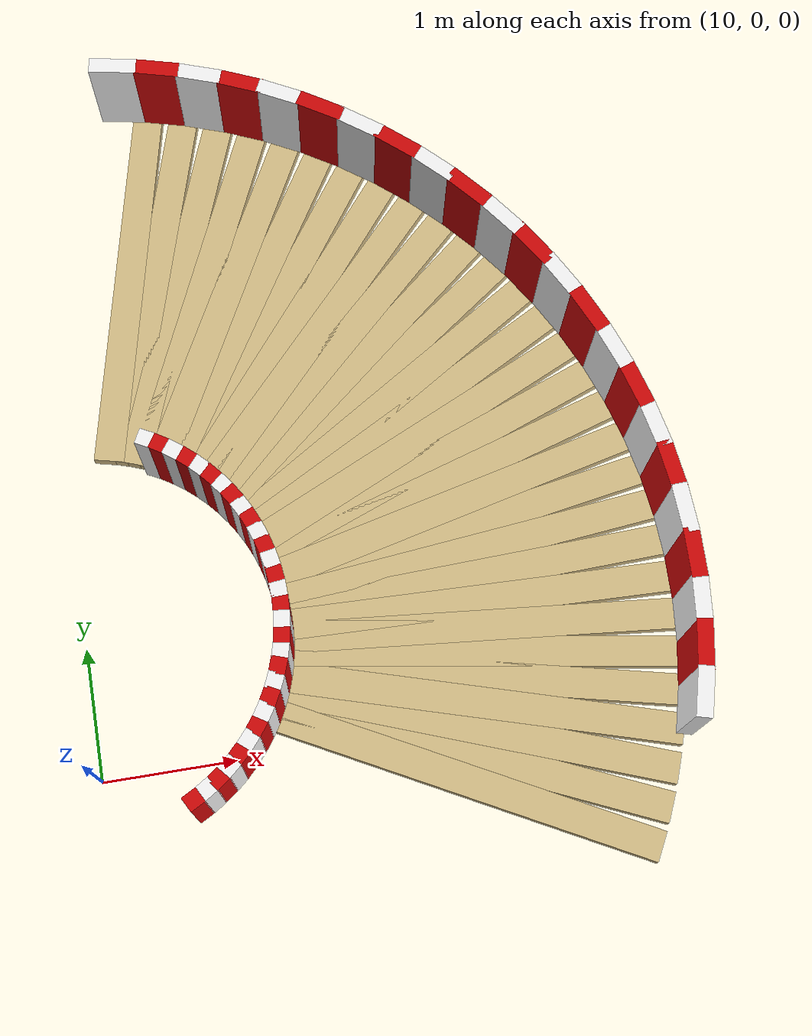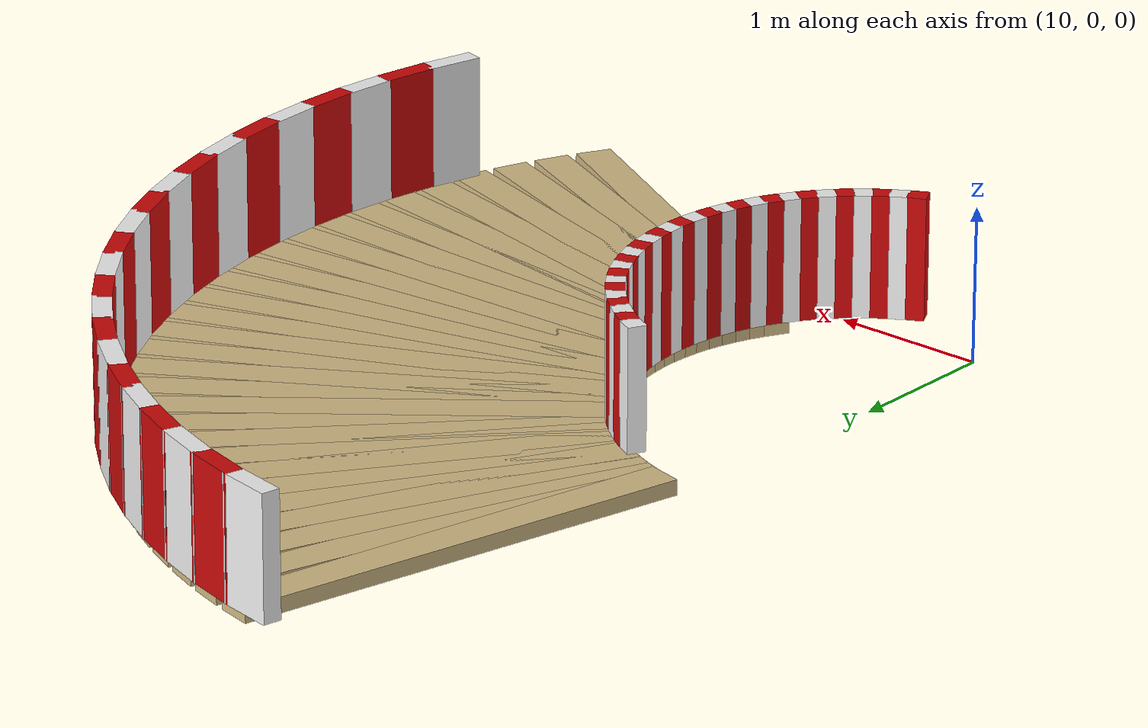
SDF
<sdf version="1.6">
 <world name="evrenos_teknofest_2026">
  <include><uri>model://sun</uri></include>
  <model name="main_course">
   <static>true</static>
   <link name="right_turn_road_16">
    <pose>12.6458 -0.4142 -0.0500 0.000000 0.000000 1.079922</pose>
    <collision name="right_turn_road_16_collision">
     <geometry><box><size>0.2356 3.0000 0.1000</size></box></geometry>
    </collision>
    <visual name="right_turn_road_16_visual">
     <geometry><box><size>0.2356 3.0000 0.1000</size></box></geometry>
     <material><ambient>0.82 0.73 0.52 1</ambient><diffuse>0.82 0.73 0.52 1</diffuse></material>
    </visual>
   </link>
   <link name="right_turn_road_17">
    <pose>12.7326 -0.2381 -0.0500 0.000000 0.000000 1.145372</pose>
    <collision name="right_turn_road_17_collision">
     <geometry><box><size>0.2356 3.0000 0.1000</size></box></geometry>
    </collision>
    <visual name="right_turn_road_17_visual">
     <geometry><box><size>0.2356 3.0000 0.1000</size></box></geometry>
     <material><ambient>0.82 0.73 0.52 1</ambient><diffuse>0.82 0.73 0.52 1</diffuse></material>
    </visual>
   </link>
   <link name="right_turn_road_18">
    <pose>12.8077 -0.0568 -0.0500 0.000000 0.000000 1.210822</pose>
    <collision name="right_turn_road_18_collision">
     <geometry><box><size>0.2356 3.0000 0.1000</size></box></geometry>
    </collision>
    <visual name="right_turn_road_18_visual">
     <geometry><box><size>0.2356 3.0000 0.1000</size></box></geometry>
     <material><ambient>0.82 0.73 0.52 1</ambient><diffuse>0.82 0.73 0.52 1</diffuse></material>
    </visual>
   </link>
   <link name="right_turn_road_19">
    <pose>12.8708 0.1291 -0.0500 0.000000 0.000000 1.276272</pose>
    <collision name="right_turn_road_19_collision">
     <geometry><box><size>0.2356 3.0000 0.1000</size></box></geometry>
    </collision>
    <visual name="right_turn_road_19_visual">
     <geometry><box><size>0.2356 3.0000 0.1000</size></box></geometry>
     <material><ambient>0.82 0.73 0.52 1</ambient><diffuse>0.82 0.73 0.52 1</diffuse></material>
    </visual>
   </link>
   <link name="right_turn_road_20">
    <pose>12.9216 0.3188 -0.0500 0.000000 0.000000 1.341722</pose>
    <collision name="right_turn_road_20_collision">
     <geometry><box><size>0.2356 3.0000 0.1000</size></box></geometry>
    </collision>
    <visual name="right_turn_road_20_visual">
     <geometry><box><size>0.2356 3.0000 0.1000</size></box></geometry>
     <material><ambient>0.82 0.73 0.52 1</ambient><diffuse>0.82 0.73 0.52 1</diffuse></material>
    </visual>
   </link>
   <link name="right_turn_road_21">
    <pose>12.9599 0.5113 -0.0500 0.000000 0.000000 1.407172</pose>
    <collision name="right_turn_road_21_collision">
     <geometry><box><size>0.2356 3.0000 0.1000</size></box></geometry>
    </collision>
    <visual name="right_turn_road_21_visual">
     <geometry><box><size>0.2356 3.0000 0.1000</size></box></geometry>
     <material><ambient>0.82 0.73 0.52 1</ambient><diffuse>0.82 0.73 0.52 1</diffuse></material>
    </visual>
   </link>
   <link name="right_turn_road_22">
    <pose>12.9856 0.7059 -0.0500 0.000000 0.000000 1.472622</pose>
    <collision name="right_turn_road_22_collision">
     <geometry><box><size>0.2356 3.0000 0.1000</size></box></geometry>
    </collision>
    <visual name="right_turn_road_22_visual">
     <geometry><box><size>0.2356 3.0000 0.1000</size></box></geometry>
     <material><ambient>0.82 0.73 0.52 1</ambient><diffuse>0.82 0.73 0.52 1</diffuse></material>
    </visual>
   </link>
   <link name="right_turn_road_23">
    <pose>12.9984 0.9018 -0.0500 0.000000 0.000000 1.538071</pose>
    <collision name="right_turn_road_23_collision">
     <geometry><box><size>0.2356 3.0000 0.1000</size></box></geometry>
    </collision>
    <visual name="right_turn_road_23_visual">
     <geometry><box><size>0.2356 3.0000 0.1000</size></box></geometry>
     <material><ambient>0.82 0.73 0.52 1</ambient><diffuse>0.82 0.73 0.52 1</diffuse></material>
    </visual>
   </link>
   <link name="right_turn_road_24">
    <pose>12.9984 1.0982 -0.0500 0.000000 0.000000 1.603521</pose>
    <collision name="right_turn_road_24_collision">
     <geometry><box><size>0.2356 3.0000 0.1000</size></box></geometry>
    </collision>
    <visual name="right_turn_road_24_visual">
     <geometry><box><size>0.2356 3.0000 0.1000</size></box></geometry>
     <material><ambient>0.82 0.73 0.52 1</ambient><diffuse>0.82 0.73 0.52 1</diffuse></material>
    </visual>
   </link>
   <link name="right_turn_road_25">
    <pose>12.9856 1.2941 -0.0500 0.000000 0.000000 1.668971</pose>
    <collision name="right_turn_road_25_collision">
     <geometry><box><size>0.2356 3.0000 0.1000</size></box></geometry>
    </collision>
    <visual name="right_turn_road_25_visual">
     <geometry><box><size>0.2356 3.0000 0.1000</size></box></geometry>
     <material><ambient>0.82 0.73 0.52 1</ambient><diffuse>0.82 0.73 0.52 1</diffuse></material>
    </visual>
   </link>
   <link name="right_turn_road_26">
    <pose>12.9599 1.4887 -0.0500 0.000000 0.000000 1.734421</pose>
    <collision name="right_turn_road_26_collision">
     <geometry><box><size>0.2356 3.0000 0.1000</size></box></geometry>
    </collision>
    <visual name="right_turn_road_26_visual">
     <geometry><box><size>0.2356 3.0000 0.1000</size></box></geometry>
     <material><ambient>0.82 0.73 0.52 1</ambient><diffuse>0.82 0.73 0.52 1</diffuse></material>
    </visual>
   </link>
   <link name="right_turn_road_27">
    <pose>12.9216 1.6812 -0.0500 0.000000 0.000000 1.799871</pose>
    <collision name="right_turn_road_27_collision">
     <geometry><box><size>0.2356 3.0000 0.1000</size></box></geometry>
    </collision>
    <visual name="right_turn_road_27_visual">
     <geometry><box><size>0.2356 3.0000 0.1000</size></box></geometry>
     <material><ambient>0.82 0.73 0.52 1</ambient><diffuse>0.82 0.73 0.52 1</diffuse></material>
    </visual>
   </link>
   <link name="right_turn_road_28">
    <pose>12.8708 1.8709 -0.0500 0.000000 0.000000 1.865321</pose>
    <collision name="right_turn_road_28_collision">
     <geometry><box><size>0.2356 3.0000 0.1000</size></box></geometry>
    </collision>
    <visual name="right_turn_road_28_visual">
     <geometry><box><size>0.2356 3.0000 0.1000</size></box></geometry>
     <material><ambient>0.82 0.73 0.52 1</ambient><diffuse>0.82 0.73 0.52 1</diffuse></material>
    </visual>
   </link>
   <link name="right_turn_road_29">
    <pose>12.8077 2.0568 -0.0500 0.000000 0.000000 1.930770</pose>
    <collision name="right_turn_road_29_collision">
     <geometry><box><size>0.2356 3.0000 0.1000</size></box></geometry>
    </collision>
    <visual name="right_turn_road_29_visual">
     <geometry><box><size>0.2356 3.0000 0.1000</size></box></geometry>
     <material><ambient>0.82 0.73 0.52 1</ambient><diffuse>0.82 0.73 0.52 1</diffuse></material>
    </visual>
   </link>
   <link name="right_turn_road_30">
    <pose>12.7326 2.2381 -0.0500 0.000000 0.000000 1.996220</pose>
    <collision name="right_turn_road_30_collision">
     <geometry><box><size>0.2356 3.0000 0.1000</size></box></geometry>
    </collision>
    <visual name="right_turn_road_30_visual">
     <geometry><box><size>0.2356 3.0000 0.1000</size></box></geometry>
     <material><ambient>0.82 0.73 0.52 1</ambient><diffuse>0.82 0.73 0.52 1</diffuse></material>
    </visual>
   </link>
   <link name="right_turn_road_31">
    <pose>12.6458 2.4142 -0.0500 0.000000 0.000000 2.061670</pose>
    <collision name="right_turn_road_31_collision">
     <geometry><box><size>0.2356 3.0000 0.1000</size></box></geometry>
    </collision>
    <visual name="right_turn_road_31_visual">
     <geometry><box><size>0.2356 3.0000 0.1000</size></box></geometry>
     <material><ambient>0.82 0.73 0.52 1</ambient><diffuse>0.82 0.73 0.52 1</diffuse></material>
    </visual>
   </link>
   <link name="right_turn_road_32">
    <pose>12.5476 2.5842 -0.0500 0.000000 0.000000 2.127120</pose>
    <collision name="right_turn_road_32_collision">
     <geometry><box><size>0.2356 3.0000 0.1000</size></box></geometry>
    </collision>
    <visual name="right_turn_road_32_visual">
     <geometry><box><size>0.2356 3.0000 0.1000</size></box></geometry>
     <material><ambient>0.82 0.73 0.52 1</ambient><diffuse>0.82 0.73 0.52 1</diffuse></material>
    </visual>
   </link>
   <link name="right_turn_road_33">
    <pose>12.4385 2.7474 -0.0500 0.000000 0.000000 2.192570</pose>
    <collision name="right_turn_road_33_collision">
     <geometry><box><size>0.2356 3.0000 0.1000</size></box></geometry>
    </collision>
    <visual name="right_turn_road_33_visual">
     <geometry><box><size>0.2356 3.0000 0.1000</size></box></geometry>
     <material><ambient>0.82 0.73 0.52 1</ambient><diffuse>0.82 0.73 0.52 1</diffuse></material>
    </visual>
   </link>
   <link name="right_turn_road_34">
    <pose>12.3190 2.9032 -0.0500 0.000000 0.000000 2.258020</pose>
    <collision name="right_turn_road_34_collision">
     <geometry><box><size>0.2356 3.0000 0.1000</size></box></geometry>
    </collision>
    <visual name="right_turn_road_34_visual">
     <geometry><box><size>0.2356 3.0000 0.1000</size></box></geometry>
     <material><ambient>0.82 0.73 0.52 1</ambient><diffuse>0.82 0.73 0.52 1</diffuse></material>
    </visual>
   </link>
   <link name="right_turn_road_35">
    <pose>12.1896 3.0508 -0.0500 0.000000 0.000000 2.323470</pose>
    <collision name="right_turn_road_35_collision">
     <geometry><box><size>0.2356 3.0000 0.1000</size></box></geometry>
    </collision>
    <visual name="right_turn_road_35_visual">
     <geometry><box><size>0.2356 3.0000 0.1000</size></box></geometry>
     <material><ambient>0.82 0.73 0.52 1</ambient><diffuse>0.82 0.73 0.52 1</diffuse></material>
    </visual>
   </link>
   <link name="right_turn_road_36">
    <pose>12.0508 3.1896 -0.0500 0.000000 0.000000 2.388919</pose>
    <collision name="right_turn_road_36_collision">
     <geometry><box><size>0.2356 3.0000 0.1000</size></box></geometry>
    </collision>
    <visual name="right_turn_road_36_visual">
     <geometry><box><size>0.2356 3.0000 0.1000</size></box></geometry>
     <material><ambient>0.82 0.73 0.52 1</ambient><diffuse>0.82 0.73 0.52 1</diffuse></material>
    </visual>
   </link>
   <link name="right_turn_road_37">
    <pose>11.9032 3.3190 -0.0500 0.000000 0.000000 2.454369</pose>
    <collision name="right_turn_road_37_collision">
     <geometry><box><size>0.2356 3.0000 0.1000</size></box></geometry>
    </collision>
    <visual name="right_turn_road_37_visual">
     <geometry><box><size>0.2356 3.0000 0.1000</size></box></geometry>
     <material><ambient>0.82 0.73 0.52 1</ambient><diffuse>0.82 0.73 0.52 1</diffuse></material>
    </visual>
   </link>
   <link name="right_turn_road_38">
    <pose>11.7474 3.4385 -0.0500 0.000000 0.000000 2.519819</pose>
    <collision name="right_turn_road_38_collision">
     <geometry><box><size>0.2356 3.0000 0.1000</size></box></geometry>
    </collision>
    <visual name="right_turn_road_38_visual">
     <geometry><box><size>0.2356 3.0000 0.1000</size></box></geometry>
     <material><ambient>0.82 0.73 0.52 1</ambient><diffuse>0.82 0.73 0.52 1</diffuse></material>
    </visual>
   </link>
   <link name="right_turn_road_39">
    <pose>11.5842 3.5476 -0.0500 0.000000 0.000000 2.585269</pose>
    <collision name="right_turn_road_39_collision">
     <geometry><box><size>0.2356 3.0000 0.1000</size></box></geometry>
    </collision>
    <visual name="right_turn_road_39_visual">
     <geometry><box><size>0.2356 3.0000 0.1000</size></box></geometry>
     <material><ambient>0.82 0.73 0.52 1</ambient><diffuse>0.82 0.73 0.52 1</diffuse></material>
    </visual>
   </link>
   <link name="right_turn_road_40">
    <pose>11.4142 3.6458 -0.0500 0.000000 0.000000 2.650719</pose>
    <collision name="right_turn_road_40_collision">
     <geometry><box><size>0.2356 3.0000 0.1000</size></box></geometry>
    </collision>
    <visual name="right_turn_road_40_visual">
     <geometry><box><size>0.2356 3.0000 0.1000</size></box></geometry>
     <material><ambient>0.82 0.73 0.52 1</ambient><diffuse>0.82 0.73 0.52 1</diffuse></material>
    </visual>
   </link>
   <link name="right_turn_road_41">
    <pose>11.2381 3.7326 -0.0500 0.000000 0.000000 2.716169</pose>
    <collision name="right_turn_road_41_collision">
     <geometry><box><size>0.2356 3.0000 0.1000</size></box></geometry>
    </collision>
    <visual name="right_turn_road_41_visual">
     <geometry><box><size>0.2356 3.0000 0.1000</size></box></geometry>
     <material><ambient>0.82 0.73 0.52 1</ambient><diffuse>0.82 0.73 0.52 1</diffuse></material>
    </visual>
   </link>
   <link name="right_turn_road_42">
    <pose>11.0568 3.8077 -0.0500 0.000000 0.000000 2.781618</pose>
    <collision name="right_turn_road_42_collision">
     <geometry><box><size>0.2356 3.0000 0.1000</size></box></geometry>
    </collision>
    <visual name="right_turn_road_42_visual">
     <geometry><box><size>0.2356 3.0000 0.1000</size></box></geometry>
     <material><ambient>0.82 0.73 0.52 1</ambient><diffuse>0.82 0.73 0.52 1</diffuse></material>
    </visual>
   </link>
   <link name="right_turn_road_43">
    <pose>10.8709 3.8708 -0.0500 0.000000 0.000000 2.847068</pose>
    <collision name="right_turn_road_43_collision">
     <geometry><box><size>0.2356 3.0000 0.1000</size></box></geometry>
    </collision>
    <visual name="right_turn_road_43_visual">
     <geometry><box><size>0.2356 3.0000 0.1000</size></box></geometry>
     <material><ambient>0.82 0.73 0.52 1</ambient><diffuse>0.82 0.73 0.52 1</diffuse></material>
    </visual>
   </link>
   <link name="right_turn_road_44">
    <pose>10.6812 3.9216 -0.0500 0.000000 0.000000 2.912518</pose>
    <collision name="right_turn_road_44_collision">
     <geometry><box><size>0.2356 3.0000 0.1000</size></box></geometry>
    </collision>
    <visual name="right_turn_road_44_visual">
     <geometry><box><size>0.2356 3.0000 0.1000</size></box></geometry>
     <material><ambient>0.82 0.73 0.52 1</ambient><diffuse>0.82 0.73 0.52 1</diffuse></material>
    </visual>
   </link>
   <link name="right_turn_bar_0_6">
    <pose>10.7009 -0.3262 0.4000 0.000000 0.000000 0.486199</pose>
    <collision name="right_turn_bar_0_6_collision">
     <geometry><box><size>0.1234 0.1200 0.8000</size></box></geometry>
    </collision>
    <visual name="right_turn_bar_0_6_visual">
     <geometry><box><size>0.1234 0.1200 0.8000</size></box></geometry>
     <material><ambient>0.8 0.03 0.03 1</ambient><diffuse>0.8 0.03 0.03 1</diffuse></material>
    </visual>
   </link>
   <link name="right_turn_bar_0_7">
    <pose>10.7980 -0.2701 0.4000 0.000000 0.000000 0.560999</pose>
    <collision name="right_turn_bar_0_7_collision">
     <geometry><box><size>0.1234 0.1200 0.8000</size></box></geometry>
    </collision>
    <visual name="right_turn_bar_0_7_visual">
     <geometry><box><size>0.1234 0.1200 0.8000</size></box></geometry>
     <material><ambient>0.95 0.95 0.95 1</ambient><diffuse>0.95 0.95 0.95 1</diffuse></material>
    </visual>
   </link>
   <link name="right_turn_bar_0_8">
    <pose>10.8907 -0.2069 0.4000 0.000000 0.000000 0.635799</pose>
    <collision name="right_turn_bar_0_8_collision">
     <geometry><box><size>0.1234 0.1200 0.8000</size></box></geometry>
    </collision>
    <visual name="right_turn_bar_0_8_visual">
     <geometry><box><size>0.1234 0.1200 0.8000</size></box></geometry>
     <material><ambient>0.8 0.03 0.03 1</ambient><diffuse>0.8 0.03 0.03 1</diffuse></material>
    </visual>
   </link>
   <link name="right_turn_bar_0_9">
    <pose>10.9784 -0.1370 0.4000 0.000000 0.000000 0.710598</pose>
    <collision name="right_turn_bar_0_9_collision">
     <geometry><box><size>0.1234 0.1200 0.8000</size></box></geometry>
    </collision>
    <visual name="right_turn_bar_0_9_visual">
     <geometry><box><size>0.1234 0.1200 0.8000</size></box></geometry>
     <material><ambient>0.95 0.95 0.95 1</ambient><diffuse>0.95 0.95 0.95 1</diffuse></material>
    </visual>
   </link>
   <link name="right_turn_bar_0_10">
    <pose>11.0607 -0.0607 0.4000 0.000000 0.000000 0.785398</pose>
    <collision name="right_turn_bar_0_10_collision">
     <geometry><box><size>0.1234 0.1200 0.8000</size></box></geometry>
    </collision>
    <visual name="right_turn_bar_0_10_visual">
     <geometry><box><size>0.1234 0.1200 0.8000</size></box></geometry>
     <material><ambient>0.8 0.03 0.03 1</ambient><diffuse>0.8 0.03 0.03 1</diffuse></material>
    </visual>
   </link>
   <link name="right_turn_bar_0_11">
    <pose>11.1370 0.0216 0.4000 0.000000 0.000000 0.860198</pose>
    <collision name="right_turn_bar_0_11_collision">
     <geometry><box><size>0.1234 0.1200 0.8000</size></box></geometry>
    </collision>
    <visual name="right_turn_bar_0_11_visual">
     <geometry><box><size>0.1234 0.1200 0.8000</size></box></geometry>
     <material><ambient>0.95 0.95 0.95 1</ambient><diffuse>0.95 0.95 0.95 1</diffuse></material>
    </visual>
   </link>
   <link name="right_turn_bar_0_12">
    <pose>11.2069 0.1093 0.4000 0.000000 0.000000 0.934998</pose>
    <collision name="right_turn_bar_0_12_collision">
     <geometry><box><size>0.1234 0.1200 0.8000</size></box></geometry>
    </collision>
    <visual name="right_turn_bar_0_12_visual">
     <geometry><box><size>0.1234 0.1200 0.8000</size></box></geometry>
     <material><ambient>0.8 0.03 0.03 1</ambient><diffuse>0.8 0.03 0.03 1</diffuse></material>
    </visual>
   </link>
   <link name="right_turn_bar_0_13">
    <pose>11.2701 0.2020 0.4000 0.000000 0.000000 1.009798</pose>
    <collision name="right_turn_bar_0_13_collision">
     <geometry><box><size>0.1234 0.1200 0.8000</size></box></geometry>
    </collision>
    <visual name="right_turn_bar_0_13_visual">
     <geometry><box><size>0.1234 0.1200 0.8000</size></box></geometry>
     <material><ambient>0.95 0.95 0.95 1</ambient><diffuse>0.95 0.95 0.95 1</diffuse></material>
    </visual>
   </link>
   <link name="right_turn_bar_0_14">
    <pose>11.3262 0.2991 0.4000 0.000000 0.000000 1.084597</pose>
    <collision name="right_turn_bar_0_14_collision">
     <geometry><box><size>0.1234 0.1200 0.8000</size></box></geometry>
    </collision>
    <visual name="right_turn_bar_0_14_visual">
     <geometry><box><size>0.1234 0.1200 0.8000</size></box></geometry>
     <material><ambient>0.8 0.03 0.03 1</ambient><diffuse>0.8 0.03 0.03 1</diffuse></material>
    </visual>
   </link>
   <link name="right_turn_bar_0_15">
    <pose>11.3748 0.4002 0.4000 0.000000 0.000000 1.159397</pose>
    <collision name="right_turn_bar_0_15_collision">
     <geometry><box><size>0.1234 0.1200 0.8000</size></box></geometry>
    </collision>
    <visual name="right_turn_bar_0_15_visual">
     <geometry><box><size>0.1234 0.1200 0.8000</size></box></geometry>
     <material><ambient>0.95 0.95 0.95 1</ambient><diffuse>0.95 0.95 0.95 1</diffuse></material>
    </visual>
   </link>
   <link name="right_turn_bar_0_16">
    <pose>11.4158 0.5046 0.4000 0.000000 0.000000 1.234197</pose>
    <collision name="right_turn_bar_0_16_collision">
     <geometry><box><size>0.1234 0.1200 0.8000</size></box></geometry>
    </collision>
    <visual name="right_turn_bar_0_16_visual">
     <geometry><box><size>0.1234 0.1200 0.8000</size></box></geometry>
     <material><ambient>0.8 0.03 0.03 1</ambient><diffuse>0.8 0.03 0.03 1</diffuse></material>
    </visual>
   </link>
   <link name="right_turn_bar_0_17">
    <pose>11.4489 0.6118 0.4000 0.000000 0.000000 1.308997</pose>
    <collision name="right_turn_bar_0_17_collision">
     <geometry><box><size>0.1234 0.1200 0.8000</size></box></geometry>
    </collision>
    <visual name="right_turn_bar_0_17_visual">
     <geometry><box><size>0.1234 0.1200 0.8000</size></box></geometry>
     <material><ambient>0.95 0.95 0.95 1</ambient><diffuse>0.95 0.95 0.95 1</diffuse></material>
    </visual>
   </link>
   <link name="right_turn_bar_0_18">
    <pose>11.4738 0.7211 0.4000 0.000000 0.000000 1.383797</pose>
    <collision name="right_turn_bar_0_18_collision">
     <geometry><box><size>0.1234 0.1200 0.8000</size></box></geometry>
    </collision>
    <visual name="right_turn_bar_0_18_visual">
     <geometry><box><size>0.1234 0.1200 0.8000</size></box></geometry>
     <material><ambient>0.8 0.03 0.03 1</ambient><diffuse>0.8 0.03 0.03 1</diffuse></material>
    </visual>
   </link>
   <link name="right_turn_bar_0_19">
    <pose>11.4906 0.8321 0.4000 0.000000 0.000000 1.458597</pose>
    <collision name="right_turn_bar_0_19_collision">
     <geometry><box><size>0.1234 0.1200 0.8000</size></box></geometry>
    </collision>
    <visual name="right_turn_bar_0_19_visual">
     <geometry><box><size>0.1234 0.1200 0.8000</size></box></geometry>
     <material><ambient>0.95 0.95 0.95 1</ambient><diffuse>0.95 0.95 0.95 1</diffuse></material>
    </visual>
   </link>
   <link name="right_turn_bar_0_20">
    <pose>11.4990 0.9439 0.4000 0.000000 0.000000 1.533396</pose>
    <collision name="right_turn_bar_0_20_collision">
     <geometry><box><size>0.1234 0.1200 0.8000</size></box></geometry>
    </collision>
    <visual name="right_turn_bar_0_20_visual">
     <geometry><box><size>0.1234 0.1200 0.8000</size></box></geometry>
     <material><ambient>0.8 0.03 0.03 1</ambient><diffuse>0.8 0.03 0.03 1</diffuse></material>
    </visual>
   </link>
   <link name="right_turn_bar_0_21">
    <pose>11.4990 1.0561 0.4000 0.000000 0.000000 1.608196</pose>
    <collision name="right_turn_bar_0_21_collision">
     <geometry><box><size>0.1234 0.1200 0.8000</size></box></geometry>
    </collision>
    <visual name="right_turn_bar_0_21_visual">
     <geometry><box><size>0.1234 0.1200 0.8000</size></box></geometry>
     <material><ambient>0.95 0.95 0.95 1</ambient><diffuse>0.95 0.95 0.95 1</diffuse></material>
    </visual>
   </link>
   <link name="right_turn_bar_0_22">
    <pose>11.4906 1.1679 0.4000 0.000000 0.000000 1.682996</pose>
    <collision name="right_turn_bar_0_22_collision">
     <geometry><box><size>0.1234 0.1200 0.8000</size></box></geometry>
    </collision>
    <visual name="right_turn_bar_0_22_visual">
     <geometry><box><size>0.1234 0.1200 0.8000</size></box></geometry>
     <material><ambient>0.8 0.03 0.03 1</ambient><diffuse>0.8 0.03 0.03 1</diffuse></material>
    </visual>
   </link>
   <link name="right_turn_bar_0_23">
    <pose>11.4738 1.2789 0.4000 0.000000 0.000000 1.757796</pose>
    <collision name="right_turn_bar_0_23_collision">
     <geometry><box><size>0.1234 0.1200 0.8000</size></box></geometry>
    </collision>
    <visual name="right_turn_bar_0_23_visual">
     <geometry><box><size>0.1234 0.1200 0.8000</size></box></geometry>
     <material><ambient>0.95 0.95 0.95 1</ambient><diffuse>0.95 0.95 0.95 1</diffuse></material>
    </visual>
   </link>
   <link name="right_turn_bar_0_24">
    <pose>11.4489 1.3882 0.4000 0.000000 0.000000 1.832596</pose>
    <collision name="right_turn_bar_0_24_collision">
     <geometry><box><size>0.1234 0.1200 0.8000</size></box></geometry>
    </collision>
    <visual name="right_turn_bar_0_24_visual">
     <geometry><box><size>0.1234 0.1200 0.8000</size></box></geometry>
     <material><ambient>0.8 0.03 0.03 1</ambient><diffuse>0.8 0.03 0.03 1</diffuse></material>
    </visual>
   </link>
   <link name="right_turn_bar_0_25">
    <pose>11.4158 1.4954 0.4000 0.000000 0.000000 1.907396</pose>
    <collision name="right_turn_bar_0_25_collision">
     <geometry><box><size>0.1234 0.1200 0.8000</size></box></geometry>
    </collision>
    <visual name="right_turn_bar_0_25_visual">
     <geometry><box><size>0.1234 0.1200 0.8000</size></box></geometry>
     <material><ambient>0.95 0.95 0.95 1</ambient><diffuse>0.95 0.95 0.95 1</diffuse></material>
    </visual>
   </link>
   <link name="right_turn_bar_0_26">
    <pose>11.3748 1.5998 0.4000 0.000000 0.000000 1.982195</pose>
    <collision name="right_turn_bar_0_26_collision">
     <geometry><box><size>0.1234 0.1200 0.8000</size></box></geometry>
    </collision>
    <visual name="right_turn_bar_0_26_visual">
     <geometry><box><size>0.1234 0.1200 0.8000</size></box></geometry>
     <material><ambient>0.8 0.03 0.03 1</ambient><diffuse>0.8 0.03 0.03 1</diffuse></material>
    </visual>
   </link>
   <link name="right_turn_bar_0_27">
    <pose>11.3262 1.7009 0.4000 0.000000 0.000000 2.056995</pose>
    <collision name="right_turn_bar_0_27_collision">
     <geometry><box><size>0.1234 0.1200 0.8000</size></box></geometry>
    </collision>
    <visual name="right_turn_bar_0_27_visual">
     <geometry><box><size>0.1234 0.1200 0.8000</size></box></geometry>
     <material><ambient>0.95 0.95 0.95 1</ambient><diffuse>0.95 0.95 0.95 1</diffuse></material>
    </visual>
   </link>
   <link name="right_turn_bar_0_28">
    <pose>11.2701 1.7980 0.4000 0.000000 0.000000 2.131795</pose>
    <collision name="right_turn_bar_0_28_collision">
     <geometry><box><size>0.1234 0.1200 0.8000</size></box></geometry>
    </collision>
    <visual name="right_turn_bar_0_28_visual">
     <geometry><box><size>0.1234 0.1200 0.8000</size></box></geometry>
     <material><ambient>0.8 0.03 0.03 1</ambient><diffuse>0.8 0.03 0.03 1</diffuse></material>
    </visual>
   </link>
   <link name="right_turn_bar_0_29">
    <pose>11.2069 1.8907 0.4000 0.000000 0.000000 2.206595</pose>
    <collision name="right_turn_bar_0_29_collision">
     <geometry><box><size>0.1234 0.1200 0.8000</size></box></geometry>
    </collision>
    <visual name="right_turn_bar_0_29_visual">
     <geometry><box><size>0.1234 0.1200 0.8000</size></box></geometry>
     <material><ambient>0.95 0.95 0.95 1</ambient><diffuse>0.95 0.95 0.95 1</diffuse></material>
    </visual>
   </link>
   <link name="right_turn_bar_0_30">
    <pose>11.1370 1.9784 0.4000 0.000000 0.000000 2.281395</pose>
    <collision name="right_turn_bar_0_30_collision">
     <geometry><box><size>0.1234 0.1200 0.8000</size></box></geometry>
    </collision>
    <visual name="right_turn_bar_0_30_visual">
     <geometry><box><size>0.1234 0.1200 0.8000</size></box></geometry>
     <material><ambient>0.8 0.03 0.03 1</ambient><diffuse>0.8 0.03 0.03 1</diffuse></material>
    </visual>
   </link>
   <link name="right_turn_bar_0_31">
    <pose>11.0607 2.0607 0.4000 0.000000 0.000000 2.356194</pose>
    <collision name="right_turn_bar_0_31_collision">
     <geometry><box><size>0.1234 0.1200 0.8000</size></box></geometry>
    </collision>
    <visual name="right_turn_bar_0_31_visual">
     <geometry><box><size>0.1234 0.1200 0.8000</size></box></geometry>
     <material><ambient>0.95 0.95 0.95 1</ambient><diffuse>0.95 0.95 0.95 1</diffuse></material>
    </visual>
   </link>
   <link name="right_turn_bar_0_32">
    <pose>10.9784 2.1370 0.4000 0.000000 0.000000 2.430994</pose>
    <collision name="right_turn_bar_0_32_collision">
     <geometry><box><size>0.1234 0.1200 0.8000</size></box></geometry>
    </collision>
    <visual name="right_turn_bar_0_32_visual">
     <geometry><box><size>0.1234 0.1200 0.8000</size></box></geometry>
     <material><ambient>0.8 0.03 0.03 1</ambient><diffuse>0.8 0.03 0.03 1</diffuse></material>
    </visual>
   </link>
   <link name="right_turn_bar_0_33">
    <pose>10.8907 2.2069 0.4000 0.000000 0.000000 2.505794</pose>
    <collision name="right_turn_bar_0_33_collision">
     <geometry><box><size>0.1234 0.1200 0.8000</size></box></geometry>
    </collision>
    <visual name="right_turn_bar_0_33_visual">
     <geometry><box><size>0.1234 0.1200 0.8000</size></box></geometry>
     <material><ambient>0.95 0.95 0.95 1</ambient><diffuse>0.95 0.95 0.95 1</diffuse></material>
    </visual>
   </link>
   <link name="right_turn_bar_0_34">
    <pose>10.7980 2.2701 0.4000 0.000000 0.000000 2.580594</pose>
    <collision name="right_turn_bar_0_34_collision">
     <geometry><box><size>0.1234 0.1200 0.8000</size></box></geometry>
    </collision>
    <visual name="right_turn_bar_0_34_visual">
     <geometry><box><size>0.1234 0.1200 0.8000</size></box></geometry>
     <material><ambient>0.8 0.03 0.03 1</ambient><diffuse>0.8 0.03 0.03 1</diffuse></material>
    </visual>
   </link>
   <link name="right_turn_bar_0_35">
    <pose>10.7009 2.3262 0.4000 0.000000 0.000000 2.655394</pose>
    <collision name="right_turn_bar_0_35_collision">
     <geometry><box><size>0.1234 0.1200 0.8000</size></box></geometry>
    </collision>
    <visual name="right_turn_bar_0_35_visual">
     <geometry><box><size>0.1234 0.1200 0.8000</size></box></geometry>
     <material><ambient>0.95 0.95 0.95 1</ambient><diffuse>0.95 0.95 0.95 1</diffuse></material>
    </visual>
   </link>
   <link name="right_turn_bar_1_17">
    <pose>14.3467 -0.1647 0.4000 0.000000 0.000000 1.308997</pose>
    <collision name="right_turn_bar_1_17_collision">
     <geometry><box><size>0.3703 0.1200 0.8000</size></box></geometry>
    </collision>
    <visual name="right_turn_bar_1_17_visual">
     <geometry><box><size>0.3703 0.1200 0.8000</size></box></geometry>
     <material><ambient>0.95 0.95 0.95 1</ambient><diffuse>0.95 0.95 0.95 1</diffuse></material>
    </visual>
   </link>
   <link name="right_turn_bar_1_18">
    <pose>14.4215 0.1634 0.4000 0.000000 0.000000 1.383797</pose>
    <collision name="right_turn_bar_1_18_collision">
     <geometry><box><size>0.3703 0.1200 0.8000</size></box></geometry>
    </collision>
    <visual name="right_turn_bar_1_18_visual">
     <geometry><box><size>0.3703 0.1200 0.8000</size></box></geometry>
     <material><ambient>0.8 0.03 0.03 1</ambient><diffuse>0.8 0.03 0.03 1</diffuse></material>
    </visual>
   </link>
   <link name="right_turn_bar_1_19">
    <pose>14.4717 0.4962 0.4000 0.000000 0.000000 1.458597</pose>
    <collision name="right_turn_bar_1_19_collision">
     <geometry><box><size>0.3703 0.1200 0.8000</size></box></geometry>
    </collision>
    <visual name="right_turn_bar_1_19_visual">
     <geometry><box><size>0.3703 0.1200 0.8000</size></box></geometry>
     <material><ambient>0.95 0.95 0.95 1</ambient><diffuse>0.95 0.95 0.95 1</diffuse></material>
    </visual>
   </link>
   <link name="right_turn_bar_1_20">
    <pose>14.4969 0.8317 0.4000 0.000000 0.000000 1.533396</pose>
    <collision name="right_turn_bar_1_20_collision">
     <geometry><box><size>0.3703 0.1200 0.8000</size></box></geometry>
    </collision>
    <visual name="right_turn_bar_1_20_visual">
     <geometry><box><size>0.3703 0.1200 0.8000</size></box></geometry>
     <material><ambient>0.8 0.03 0.03 1</ambient><diffuse>0.8 0.03 0.03 1</diffuse></material>
    </visual>
   </link>
   <link name="right_turn_bar_1_21">
    <pose>14.4969 1.1683 0.4000 0.000000 0.000000 1.608196</pose>
    <collision name="right_turn_bar_1_21_collision">
     <geometry><box><size>0.3703 0.1200 0.8000</size></box></geometry>
    </collision>
    <visual name="right_turn_bar_1_21_visual">
     <geometry><box><size>0.3703 0.1200 0.8000</size></box></geometry>
     <material><ambient>0.95 0.95 0.95 1</ambient><diffuse>0.95 0.95 0.95 1</diffuse></material>
    </visual>
   </link>
   <link name="right_turn_bar_1_22">
    <pose>14.4717 1.5038 0.4000 0.000000 0.000000 1.682996</pose>
    <collision name="right_turn_bar_1_22_collision">
     <geometry><box><size>0.3703 0.1200 0.8000</size></box></geometry>
    </collision>
    <visual name="right_turn_bar_1_22_visual">
     <geometry><box><size>0.3703 0.1200 0.8000</size></box></geometry>
     <material><ambient>0.8 0.03 0.03 1</ambient><diffuse>0.8 0.03 0.03 1</diffuse></material>
    </visual>
   </link>
   <link name="right_turn_bar_1_23">
    <pose>14.4215 1.8366 0.4000 0.000000 0.000000 1.757796</pose>
    <collision name="right_turn_bar_1_23_collision">
     <geometry><box><size>0.3703 0.1200 0.8000</size></box></geometry>
    </collision>
    <visual name="right_turn_bar_1_23_visual">
     <geometry><box><size>0.3703 0.1200 0.8000</size></box></geometry>
     <material><ambient>0.95 0.95 0.95 1</ambient><diffuse>0.95 0.95 0.95 1</diffuse></material>
    </visual>
   </link>
   <link name="right_turn_bar_1_24">
    <pose>14.3467 2.1647 0.4000 0.000000 0.000000 1.832596</pose>
    <collision name="right_turn_bar_1_24_collision">
     <geometry><box><size>0.3703 0.1200 0.8000</size></box></geometry>
    </collision>
    <visual name="right_turn_bar_1_24_visual">
     <geometry><box><size>0.3703 0.1200 0.8000</size></box></geometry>
     <material><ambient>0.8 0.03 0.03 1</ambient><diffuse>0.8 0.03 0.03 1</diffuse></material>
    </visual>
   </link>
   <link name="right_turn_bar_1_25">
    <pose>14.2475 2.4863 0.4000 0.000000 0.000000 1.907396</pose>
    <collision name="right_turn_bar_1_25_collision">
     <geometry><box><size>0.3703 0.1200 0.8000</size></box></geometry>
    </collision>
    <visual name="right_turn_bar_1_25_visual">
     <geometry><box><size>0.3703 0.1200 0.8000</size></box></geometry>
     <material><ambient>0.95 0.95 0.95 1</ambient><diffuse>0.95 0.95 0.95 1</diffuse></material>
    </visual>
   </link>
   <link name="right_turn_bar_1_26">
    <pose>14.1245 2.7995 0.4000 0.000000 0.000000 1.982195</pose>
    <collision name="right_turn_bar_1_26_collision">
     <geometry><box><size>0.3703 0.1200 0.8000</size></box></geometry>
    </collision>
    <visual name="right_turn_bar_1_26_visual">
     <geometry><box><size>0.3703 0.1200 0.8000</size></box></geometry>
     <material><ambient>0.8 0.03 0.03 1</ambient><diffuse>0.8 0.03 0.03 1</diffuse></material>
    </visual>
   </link>
   <link name="right_turn_bar_1_27">
    <pose>13.9785 3.1027 0.4000 0.000000 0.000000 2.056995</pose>
    <collision name="right_turn_bar_1_27_collision">
     <geometry><box><size>0.3703 0.1200 0.8000</size></box></geometry>
    </collision>
    <visual name="right_turn_bar_1_27_visual">
     <geometry><box><size>0.3703 0.1200 0.8000</size></box></geometry>
     <material><ambient>0.95 0.95 0.95 1</ambient><diffuse>0.95 0.95 0.95 1</diffuse></material>
    </visual>
   </link>
   <link name="right_turn_bar_1_28">
    <pose>13.8103 3.3941 0.4000 0.000000 0.000000 2.131795</pose>
    <collision name="right_turn_bar_1_28_collision">
     <geometry><box><size>0.3703 0.1200 0.8000</size></box></geometry>
    </collision>
    <visual name="right_turn_bar_1_28_visual">
     <geometry><box><size>0.3703 0.1200 0.8000</size></box></geometry>
     <material><ambient>0.8 0.03 0.03 1</ambient><diffuse>0.8 0.03 0.03 1</diffuse></material>
    </visual>
   </link>
   <link name="right_turn_bar_1_29">
    <pose>13.6207 3.6722 0.4000 0.000000 0.000000 2.206595</pose>
    <collision name="right_turn_bar_1_29_collision">
     <geometry><box><size>0.3703 0.1200 0.8000</size></box></geometry>
    </collision>
    <visual name="right_turn_bar_1_29_visual">
     <geometry><box><size>0.3703 0.1200 0.8000</size></box></geometry>
     <material><ambient>0.95 0.95 0.95 1</ambient><diffuse>0.95 0.95 0.95 1</diffuse></material>
    </visual>
   </link>
   <link name="right_turn_bar_1_30">
    <pose>13.4109 3.9353 0.4000 0.000000 0.000000 2.281395</pose>
    <collision name="right_turn_bar_1_30_collision">
     <geometry><box><size>0.3703 0.1200 0.8000</size></box></geometry>
    </collision>
    <visual name="right_turn_bar_1_30_visual">
     <geometry><box><size>0.3703 0.1200 0.8000</size></box></geometry>
     <material><ambient>0.8 0.03 0.03 1</ambient><diffuse>0.8 0.03 0.03 1</diffuse></material>
    </visual>
   </link>
   <link name="right_turn_bar_1_31">
    <pose>13.1820 4.1820 0.4000 0.000000 0.000000 2.356194</pose>
    <collision name="right_turn_bar_1_31_collision">
     <geometry><box><size>0.3703 0.1200 0.8000</size></box></geometry>
    </collision>
    <visual name="right_turn_bar_1_31_visual">
     <geometry><box><size>0.3703 0.1200 0.8000</size></box></geometry>
     <material><ambient>0.95 0.95 0.95 1</ambient><diffuse>0.95 0.95 0.95 1</diffuse></material>
    </visual>
   </link>
   <link name="right_turn_bar_1_32">
    <pose>12.9353 4.4109 0.4000 0.000000 0.000000 2.430994</pose>
    <collision name="right_turn_bar_1_32_collision">
     <geometry><box><size>0.3703 0.1200 0.8000</size></box></geometry>
    </collision>
    <visual name="right_turn_bar_1_32_visual">
     <geometry><box><size>0.3703 0.1200 0.8000</size></box></geometry>
     <material><ambient>0.8 0.03 0.03 1</ambient><diffuse>0.8 0.03 0.03 1</diffuse></material>
    </visual>
   </link>
   <link name="right_turn_bar_1_33">
    <pose>12.6722 4.6207 0.4000 0.000000 0.000000 2.505794</pose>
    <collision name="right_turn_bar_1_33_collision">
     <geometry><box><size>0.3703 0.1200 0.8000</size></box></geometry>
    </collision>
    <visual name="right_turn_bar_1_33_visual">
     <geometry><box><size>0.3703 0.1200 0.8000</size></box></geometry>
     <material><ambient>0.95 0.95 0.95 1</ambient><diffuse>0.95 0.95 0.95 1</diffuse></material>
    </visual>
   </link>
   <link name="right_turn_bar_1_34">
    <pose>12.3941 4.8103 0.4000 0.000000 0.000000 2.580594</pose>
    <collision name="right_turn_bar_1_34_collision">
     <geometry><box><size>0.3703 0.1200 0.8000</size></box></geometry>
    </collision>
    <visual name="right_turn_bar_1_34_visual">
     <geometry><box><size>0.3703 0.1200 0.8000</size></box></geometry>
     <material><ambient>0.8 0.03 0.03 1</ambient><diffuse>0.8 0.03 0.03 1</diffuse></material>
    </visual>
   </link>
   <link name="right_turn_bar_1_35">
    <pose>12.1027 4.9785 0.4000 0.000000 0.000000 2.655394</pose>
    <collision name="right_turn_bar_1_35_collision">
     <geometry><box><size>0.3703 0.1200 0.8000</size></box></geometry>
    </collision>
    <visual name="right_turn_bar_1_35_visual">
     <geometry><box><size>0.3703 0.1200 0.8000</size></box></geometry>
     <material><ambient>0.95 0.95 0.95 1</ambient><diffuse>0.95 0.95 0.95 1</diffuse></material>
    </visual>
   </link>
   <link name="right_turn_bar_1_36">
    <pose>11.7995 5.1245 0.4000 0.000000 0.000000 2.730194</pose>
    <collision name="right_turn_bar_1_36_collision">
     <geometry><box><size>0.3703 0.1200 0.8000</size></box></geometry>
    </collision>
    <visual name="right_turn_bar_1_36_visual">
     <geometry><box><size>0.3703 0.1200 0.8000</size></box></geometry>
     <material><ambient>0.8 0.03 0.03 1</ambient><diffuse>0.8 0.03 0.03 1</diffuse></material>
    </visual>
   </link>
   <link name="right_turn_bar_1_37">
    <pose>11.4863 5.2475 0.4000 0.000000 0.000000 2.804993</pose>
    <collision name="right_turn_bar_1_37_collision">
     <geometry><box><size>0.3703 0.1200 0.8000</size></box></geometry>
    </collision>
    <visual name="right_turn_bar_1_37_visual">
     <geometry><box><size>0.3703 0.1200 0.8000</size></box></geometry>
     <material><ambient>0.95 0.95 0.95 1</ambient><diffuse>0.95 0.95 0.95 1</diffuse></material>
    </visual>
   </link>
   <link name="right_turn_bar_1_38">
    <pose>11.1647 5.3467 0.4000 0.000000 0.000000 2.879793</pose>
    <collision name="right_turn_bar_1_38_collision">
     <geometry><box><size>0.3703 0.1200 0.8000</size></box></geometry>
    </collision>
    <visual name="right_turn_bar_1_38_visual">
     <geometry><box><size>0.3703 0.1200 0.8000</size></box></geometry>
     <material><ambient>0.8 0.03 0.03 1</ambient><diffuse>0.8 0.03 0.03 1</diffuse></material>
    </visual>
   </link>
   <link name="right_turn_bar_1_39">
    <pose>10.8366 5.4215 0.4000 0.000000 0.000000 2.954593</pose>
    <collision name="right_turn_bar_1_39_collision">
     <geometry><box><size>0.3703 0.1200 0.8000</size></box></geometry>
    </collision>
    <visual name="right_turn_bar_1_39_visual">
     <geometry><box><size>0.3703 0.1200 0.8000</size></box></geometry>
     <material><ambient>0.95 0.95 0.95 1</ambient><diffuse>0.95 0.95 0.95 1</diffuse></material>
    </visual>
   </link>
  </model>
 </world>
</sdf>
